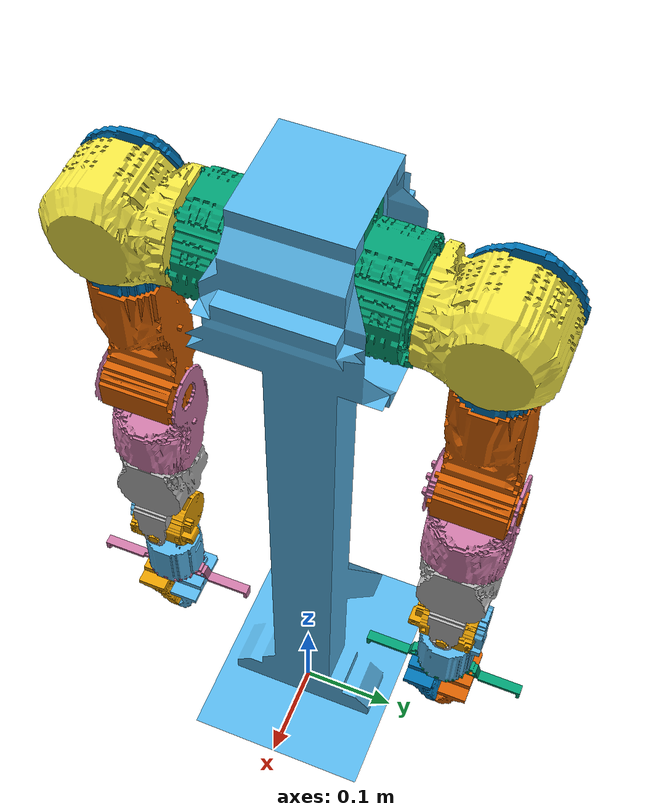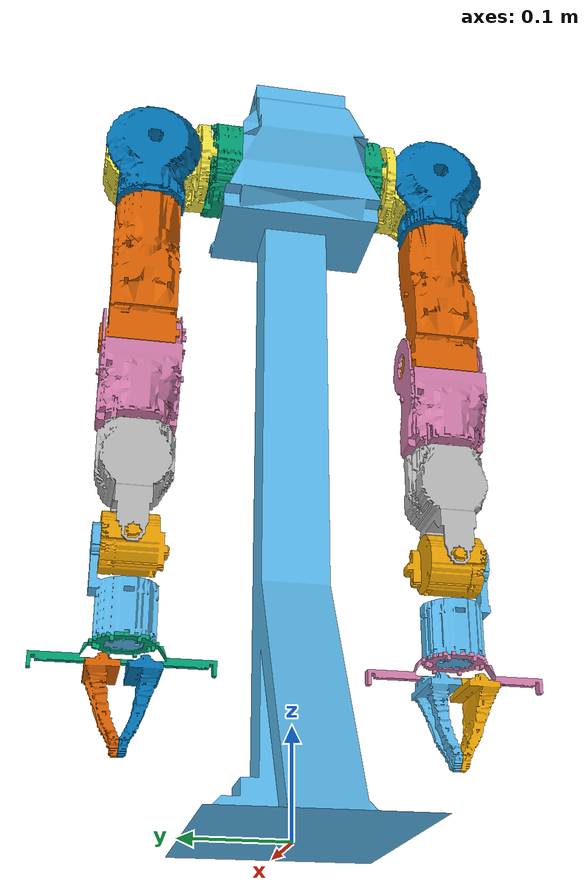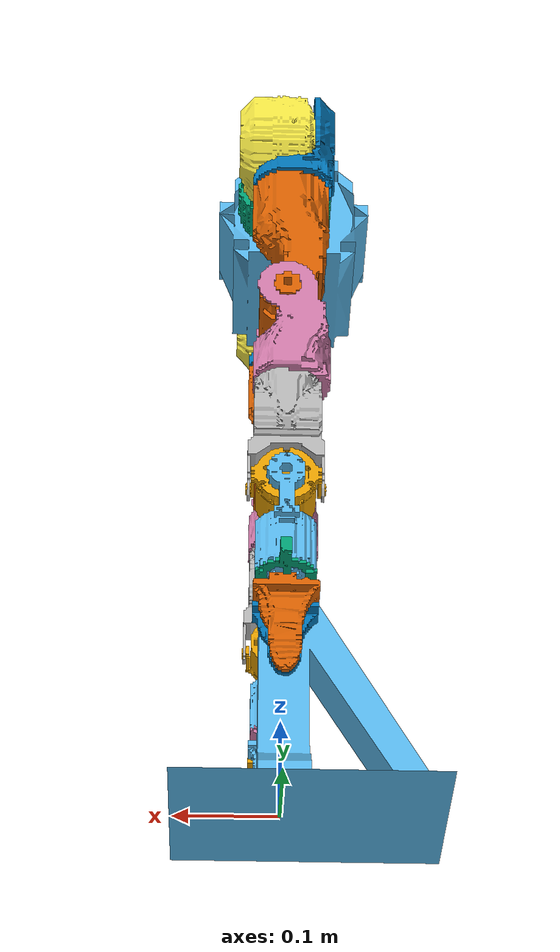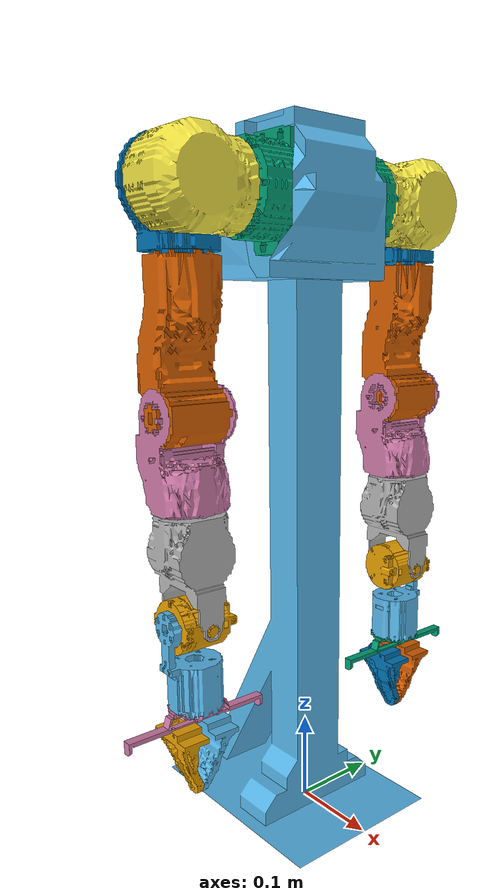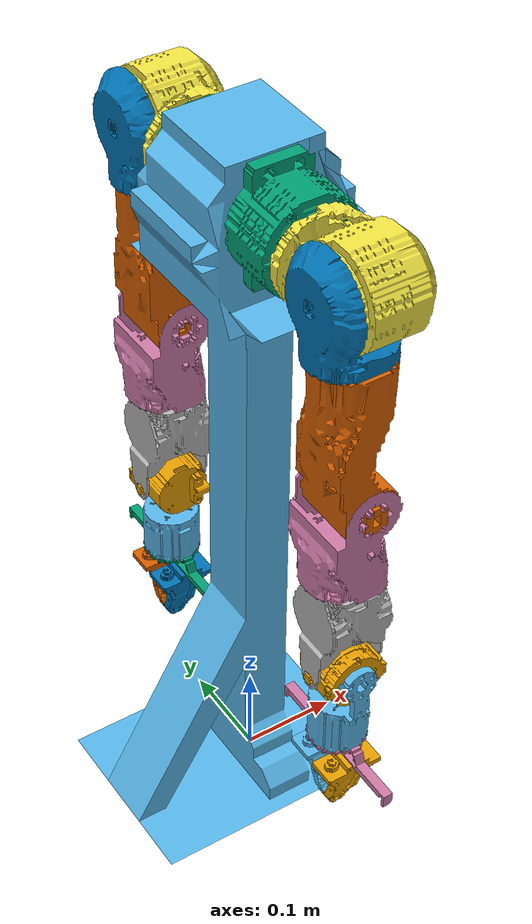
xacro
<?xml version="1.0"?>
<robot name="openarm_v10" xmlns:xacro="http://www.ros.org/wiki/xacro">

	<xacro:arg name="ros2_control_hardware_type" default="mock_components"/>

	<link name="world"/>

	<joint name="world_fixed" type="fixed">
		<parent link="world"/>
		<child link="base_link"/>
	</joint>

	<xacro:arg name="type" default="bimanual"/>

	<!-- 直接include robot.xacro并根据type参数传递 -->
	<xacro:include filename="$(find openarm_description)/xacro/robot.xacro"/>

	<xacro:include filename="$(find openarm_description)/xacro/ros2_control/interfaces.xacro"/>
	<ros2_control name="openarm_$(arg type)_system" type="system">
		<hardware>
			<xacro:if value="${'$(arg ros2_control_hardware_type)' == 'gz'}">
				<plugin>gz_ros2_control/GazeboSimSystem</plugin>
			</xacro:if>
			<xacro:if value="${'$(arg ros2_control_hardware_type)' == 'mock_components'}">
				<plugin>mock_components/GenericSystem</plugin>
			</xacro:if>
			<xacro:if value="${'$(arg ros2_control_hardware_type)' == 'isaac'}">
				<plugin>topic_based_ros2_control/TopicBasedSystem</plugin>
				<param name="joint_commands_topic">/isaac/joint_command</param>
				<param name="joint_states_topic">/isaac/joint_states</param>
				<param name="sum_wrapped_joint_states">false</param>
				<param name="initialize_commands_from_state">true</param>
			</xacro:if>
			<xacro:if value="${'$(arg ros2_control_hardware_type)' == 'real'}">
				<plugin>topic_based_ros2_control/TopicBasedSystem</plugin>
				<param name="joint_commands_topic">/joint_command_robot</param>
				<param name="joint_states_topic">/joint_states_robot</param>
				<param name="sum_wrapped_joint_states">false</param>
				<param name="initialize_commands_from_state">true</param>
			</xacro:if>
		</hardware>

		<xacro:if value="${'$(arg type)' == 'bimanual'}">
			<!-- Left Arm Joints -->
			<xacro:openarm_interfaces name="left"/>
			<!-- Right Arm Joints -->
			<xacro:openarm_interfaces name="right"/>
		</xacro:if>

		<xacro:if value="${'$(arg type)' == 'left' or '$(arg type)' == 'right'}">
			<xacro:openarm_interfaces name=""/>
		</xacro:if>

	</ros2_control>

	<!-- Gazebo plugin configuration -->
	<xacro:arg name="gazebo" default="false"/>
	<xacro:if value="$(arg gazebo)">
		<gazebo>
			<plugin filename="gz_ros2_control-system" name="gz_ros2_control::GazeboSimROS2ControlPlugin">
				<xacro:if value="${'$(arg type)' == 'bimanual'}">
					<parameters>$(find openarm_description)/config/ros2_control/ros2_controllers.yaml</parameters>
				</xacro:if>
				<xacro:if value="${'$(arg type)' == 'left'}">
					<parameters>$(find openarm_description)/config/ros2_control/left.yaml</parameters>
				</xacro:if>
				<xacro:if value="${'$(arg type)' == 'right'}">
					<parameters>$(find openarm_description)/config/ros2_control/right.yaml</parameters>
				</xacro:if>
			</plugin>
		</gazebo>
	</xacro:if>
</robot>

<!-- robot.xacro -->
<robot name="OpenArm" xmlns:xacro="http://www.ros.org/wiki/xacro">

	<xacro:include filename="$(find openarm_description)/xacro/arm.xacro"/>
	<xacro:include filename="$(find openarm_description)/xacro/gripper.xacro"/>

	<xacro:arg name="type" default="bimanual"/>

	<!-- 根据type参数决定机器人类型 -->
	<xacro:if value="${'$(arg type)' == 'bimanual'}">
		<!-- Base link -->
		<link name="base_link">
			<inertial>
				<mass value="13.89"/>
				<inertia ixx="1.653" ixy="0.0" ixz="0.0" iyy="1.653" iyz="0.0" izz="0.051"/>
			</inertial>
			<visual>
				<geometry>
					<mesh filename="file://$(find openarm_description)/meshes/body/body.obj"/>
				</geometry>
			</visual>
			<collision>
				<geometry>
					<mesh filename="file://$(find openarm_description)/meshes/body/body.stl"/>
				</geometry>
			</collision>
		</link>

		<!-- Left Arm -->
		<joint name="left_arm_base_joint" type="fixed">
			<parent link="base_link"/>
			<child link="left_base_link"/>
			<origin rpy="-1.5708 0 0" xyz="0.0 0.031 0.698"/>
		</joint>
		<xacro:OpenArm name="left" direction="-1"/>

		<!-- Right Arm -->
		<joint name="right_arm_base_joint" type="fixed">
			<parent link="base_link"/>
			<child link="right_base_link"/>
			<origin rpy="1.5708 0 0" xyz="0.0 -0.031 0.698"/>
		</joint>
		<xacro:OpenArm name="right" direction="1"/>

		<!-- Left Gripper -->
		<joint name="left_hand_joint" type="fixed">
			<parent link="left_link7"/>
			<child link="left_hand"/>
			<origin xyz="0 -0.0 0.1001"/>
		</joint>
		<xacro:OpenArmGripper name="left"/>

		<!-- Right Gripper -->
		<joint name="right_hand_joint" type="fixed">
			<parent link="right_link7"/>
			<child link="right_hand"/>
			<origin xyz="0 -0.0 0.1001"/>
		</joint>
		<xacro:OpenArmGripper name="right"/>
	</xacro:if>

	<xacro:if value="${'$(arg type)' == 'right'}">
		<xacro:OpenArm name=""/>
		<joint name="hand_joint" type="fixed">
			<parent link="link7"/>
			<child link="hand"/>
			<origin xyz="0 -0.0 0.1001"/>
		</joint>
		<xacro:OpenArmGripper name=""/>
	</xacro:if>

	<xacro:if value="${'$(arg type)' == 'left'}">
		<xacro:OpenArm name="" direction="-1"/>
		<joint name="hand_joint" type="fixed">
			<parent link="link7"/>
			<child link="hand"/>
			<origin xyz="0 -0.0 0.1001"/>
		</joint>
		<xacro:OpenArmGripper name=""/>
	</xacro:if>

</robot>

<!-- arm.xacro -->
<robot xmlns:xacro="http://www.ros.org/wiki/xacro">

	<xacro:macro name="OpenArm" params="name direction:=1">
		<xacro:property name="prefix" value="${name + '_' if name else ''}"/>

		<!-- Arm base link -->
		<link name="${prefix}base_link">
			<visual>
				<geometry>
					<mesh filename="file://$(find openarm_description)/meshes/arm/visual/base.obj"
								scale="1 ${direction*1} 1"/>
				</geometry>
			</visual>
			<collision>
				<geometry>
					<mesh filename="file://$(find openarm_description)/meshes/arm/collision/base.stl"/>
				</geometry>
			</collision>
			<inertial>
				<origin xyz="-0.0009483362816297526 ${direction*0.0001580207020448382} 0.03076860287587199"/>
				<mass value="1.1432284943239561"/>
				<inertia ixx="0.001128" ixy="-4e-06" ixz="-3.3e-05" iyy="0.000962" iyz="-7e-06" izz="0.00147"/>
			</inertial>
		</link>

		<!-- Link 1 -->
		<link name="${prefix}link1">
			<visual>
				<geometry>
					<mesh filename="file://$(find openarm_description)/meshes/arm/visual/link1.obj"
								scale="1 ${direction*1} 1"/>
				</geometry>
			</visual>
			<collision>
				<geometry>
					<mesh filename="file://$(find openarm_description)/meshes/arm/collision/link1.stl"
								scale="1 ${direction*1} 1"/>
				</geometry>
			</collision>
			<inertial>
				<origin xyz="0.0011467657911800769 ${direction*3.319987657026362e-05} 0.05395284380736254"/>
				<mass value="1.1416684646202298"/>
				<inertia ixx="0.001567" ixy="-1e-06" ixz="-2.9e-05" iyy="0.001273" iyz="1e-06" izz="0.001016"/>
			</inertial>
		</link>

		<joint name="${prefix}joint1" type="revolute">
			<origin xyz="0.0 0.0 0.0625"/>
			<parent link="${prefix}base_link"/>
			<child link="${prefix}link1"/>
			<axis xyz="0 0 1"/>
			<xacro:if value="${direction == -1}">
				<limit effort="40" lower="-3.490659" upper="1.3962629999999998" velocity="16.754666"/>
			</xacro:if>
			<xacro:if value="${direction == 1}">
				<limit effort="40" lower="-1.396263" upper="3.490659" velocity="16.754666"/>
			</xacro:if>
		</joint>

		<!-- Link 2 -->
		<link name="${prefix}link2">
			<visual>
				<geometry>
					<mesh filename="file://$(find openarm_description)/meshes/arm/visual/link2.obj" scale="1 ${direction} 1"/>
				</geometry>
			</visual>
			<collision>
				<origin xyz="0.0301 0.0 -0.1225"/>
				<geometry>
					<mesh filename="file://$(find openarm_description)/meshes/arm/collision/link2.stl"
								scale="1 ${direction} 1"/>
				</geometry>
			</collision>
			<inertial>
				<origin xyz="0.00839629182351943 ${direction*-2.0145102027597523e-08} 0.03256649300522363"/>
				<mass value="0.2775092746011571"/>
				<inertia ixx="0.000359" ixy="1e-06" ixz="-0.000109" iyy="0.000376" iyz="1e-06" izz="0.000232"/>
			</inertial>
		</link>

		<joint name="${prefix}joint2" type="revolute">
			<xacro:if value="${prefix == ''}">
				<origin xyz="-0.0301 0.0 0.06"/>
			</xacro:if>
			<xacro:unless value="${prefix == ''}">
				<origin rpy="${direction*1.57079632679} 0 0" xyz="-0.0301 0.0 0.06"/>
			</xacro:unless>
			<parent link="${prefix}link1"/>
			<child link="${prefix}link2"/>
			<axis xyz="-1 0 0"/>
			<xacro:if value="${direction == -1}">
				<limit effort="40" lower="-3.3161253267948965" upper="0.17453267320510335" velocity="16.754666"/>
			</xacro:if>
			<xacro:if value="${direction == 1}">
				<limit effort="40" lower="-0.17453267320510335" upper="3.3161253267948965" velocity="16.754666"/>
			</xacro:if>
		</joint>

		<!-- Link 3 -->
		<link name="${prefix}link3">
			<visual>
				<geometry>
					<mesh filename="file://$(find openarm_description)/meshes/arm/visual/link3.obj" scale="1 ${direction} 1"/>
				</geometry>
			</visual>
			<collision>
				<geometry>
					<mesh filename="file://$(find openarm_description)/meshes/arm/collision/link3.stl"
								scale="1 ${direction} 1"/>
				</geometry>
			</collision>
			<inertial>
				<origin xyz="-0.002104752099628911 ${direction*-0.0005549085042607548} 0.09047470545721961"/>
				<mass value="1.073863338202347"/>
				<inertia ixx="0.004372" ixy="1e-06" ixz="1.1e-05" iyy="0.004319" iyz="-3.6e-05" izz="0.000661"/>
			</inertial>
		</link>

		<joint name="${prefix}joint3" type="revolute">
			<origin xyz="0.0301 0.0 0.06625"/>
			<parent link="${prefix}link2"/>
			<child link="${prefix}link3"/>
			<axis xyz="0 0 1"/>
			<limit effort="27" lower="-1.570796" upper="1.570796" velocity="5.445426"/>
		</joint>

		<!-- Link 4 -->
		<link name="${prefix}link4">
			<visual>
				<geometry>
					<mesh filename="file://$(find openarm_description)/meshes/arm/visual/link4.obj"/>
				</geometry>
			</visual>
			<collision>
				<geometry>
					<mesh filename="file://$(find openarm_description)/meshes/arm/collision/link4.stl"/>
				</geometry>
			</collision>
			<inertial>
				<origin xyz="-0.0029006831074562967 -0.03030575826634669 0.06339637422196209"/>
				<mass value="0.6348534566833373"/>
				<inertia ixx="0.000623" ixy="-1e-06" ixz="-1.9e-05" iyy="0.000511" iyz="3.8e-05" izz="0.000334"/>
			</inertial>
		</link>

		<joint name="${prefix}joint4" type="revolute">
			<origin xyz="-0.0 0.0315 0.15375"/>
			<parent link="${prefix}link3"/>
			<child link="${prefix}link4"/>
			<axis xyz="0 1 0"/>
			<limit effort="27" lower="0.0" upper="2.443461" velocity="5.445426"/>
		</joint>

		<!-- Link 5 -->
		<link name="${prefix}link5">
			<visual>
				<geometry>
					<mesh filename="file://$(find openarm_description)/meshes/arm/visual/link5.obj" scale="1 ${direction} 1"/>
				</geometry>
			</visual>
			<collision>
				<geometry>
					<mesh filename="file://$(find openarm_description)/meshes/arm/collision/link5.stl"
								scale="1 ${direction} 1"/>
				</geometry>
			</collision>
			<inertial>
				<origin xyz="-0.003049665024221911 ${direction*0.0008866902457326625} 0.043079803024980934"/>
				<mass value="0.6156588026168502"/>
				<inertia ixx="0.000423" ixy="-8e-06" ixz="6e-06" iyy="0.000445" iyz="-6e-06" izz="0.000324"/>
			</inertial>
		</link>

		<joint name="${prefix}joint5" type="revolute">
			<origin xyz="0.0 -0.0315 0.0955"/>
			<parent link="${prefix}link4"/>
			<child link="${prefix}link5"/>
			<axis xyz="0 0 1"/>
			<limit effort="7" lower="-1.570796" upper="1.570796" velocity="20.943946"/>
		</joint>

		<!-- Link 6 -->
		<link name="${prefix}link6">
			<visual>
				<geometry>
					<mesh filename="file://$(find openarm_description)/meshes/arm/visual/link6.obj"
								scale="1 ${direction*1} 1"/>
				</geometry>
			</visual>
			<collision>
				<geometry>
					<mesh filename="file://$(find openarm_description)/meshes/arm/collision/link6.stl"
								scale="1 ${direction*1} 1"/>
				</geometry>
			</collision>
			<inertial>
				<origin xyz="-0.037136587005447405 ${direction*0.00033230528343419053} -9.498374522309838e-05"/>
				<mass value="0.475202773187987"/>
				<inertia ixx="0.000143" ixy="1e-06" ixz="1e-06" iyy="0.000157" iyz="1e-06" izz="0.000159"/>
			</inertial>
		</link>

		<joint name="${prefix}joint6" type="revolute">
			<origin xyz="0.0375 0.0 0.1205"/>
			<parent link="${prefix}link5"/>
			<child link="${prefix}link6"/>
			<axis xyz="1 0 0"/>
			<limit effort="7" lower="-0.785398" upper="0.785398" velocity="20.943946"/>
		</joint>

		<!-- Link 7 -->
		<link name="${prefix}link7">
			<visual>
				<geometry>
					<mesh filename="file://$(find openarm_description)/meshes/arm/visual/link7.obj"
								scale="1 ${direction*1} 1"/>
				</geometry>
			</visual>
			<collision>
				<geometry>
					<mesh filename="file://$(find openarm_description)/meshes/arm/collision/link7.stl"
								scale="1 ${direction*1} 1"/>
				</geometry>
			</collision>
			<inertial>
				<origin xyz="6.875510271106056e-05 ${direction*0.01266175250761268} 0.06951945409987448"/>
				<mass value="0.4659771327380578"/>
				<inertia ixx="0.000639" ixy="1e-06" ixz="1e-06" iyy="0.000497" iyz="8.9e-05" izz="0.000342"/>
			</inertial>
		</link>

		<joint name="${prefix}joint7" type="revolute">
			<origin xyz="-0.0375 0.0 0.0"/>
			<parent link="${prefix}link6"/>
			<child link="${prefix}link7"/>
			<axis xyz="0 ${direction*1} 0"/>
			<limit effort="7" lower="-1.570796" upper="1.570796" velocity="20.943946"/>
		</joint>

	</xacro:macro>

</robot>

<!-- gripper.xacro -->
<robot xmlns:xacro="http://www.ros.org/wiki/xacro">

	<xacro:macro name="OpenArmGripper" params="name">
		<xacro:property name="prefix" value="${name + '_' if name else ''}"/>

		<!-- Hand base link -->
		<link name="${prefix}hand">
			<visual>
				<geometry>
					<mesh filename="file://$(find openarm_description)/meshes/gripper/visual/hand.obj"/>
				</geometry>
			</visual>
			<collision>
				<geometry>
					<mesh filename="file://$(find openarm_description)/meshes/gripper/collision/hand.stl"/>
				</geometry>
			</collision>
			<inertial>
				<origin xyz="0.0 0.002 0.03"/>
				<mass value="0.35"/>
				<inertia ixx="0.0002473" ixy="1e-06" ixz="1e-06" iyy="1.763e-05" iyz="1e-06" izz="0.0002521"/>
			</inertial>
		</link>

		<!-- Hand TCP frame -->
		<link name="${prefix}hand_tcp"/>
		<joint name="${prefix}hand_tcp_joint" type="fixed">
			<origin xyz="0 -0.0 0.08"/>
			<parent link="${prefix}hand"/>
			<child link="${prefix}hand_tcp"/>
		</joint>

		<!-- Left finger (from gripper perspective) -->
		<link name="${prefix}left_finger">
			<visual>
				<geometry>
					<mesh filename="file://$(find openarm_description)/meshes/gripper/visual/finger.obj"/>
				</geometry>
			</visual>
			<collision>
				<geometry>
					<mesh filename="file://$(find openarm_description)/meshes/gripper/collision/finger.stl"/>
				</geometry>
			</collision>
			<inertial>
				<origin xyz="0.0064528 0.01702 0.0219685"/>
				<mass value="0.03602545343277134"/>
				<inertia ixx="0.0001" ixy="0" ixz="0" iyy="0.0001" iyz="0" izz="0.0001"/>
			</inertial>
		</link>

		<!-- Right finger (from gripper perspective) -->
		<link name="${prefix}right_finger">
			<inertial>
				<origin xyz="0.0064528 -0.01702 0.0219685"/>
				<mass value="0.03602545343277134"/>
				<inertia ixx="0.0001" ixy="0" ixz="0" iyy="0.0001" iyz="0" izz="0.0001"/>
			</inertial>
			<visual>
				<geometry>
					<mesh filename="file://$(find openarm_description)/meshes/gripper/visual/finger.obj" scale="1 -1 1"/>
				</geometry>
			</visual>
			<collision>
				<geometry>
					<mesh filename="file://$(find openarm_description)/meshes/gripper/collision/finger.stl" scale="1 -1 1"/>
				</geometry>
			</collision>
		</link>

		<!-- Finger joints -->
		<joint name="${prefix}gripper_joint" type="prismatic">
			<parent link="${prefix}hand"/>
			<child link="${prefix}right_finger"/>
			<origin xyz="0 -0.006 0.015"/>
			<axis xyz="0 -1 0"/>
			<limit effort="333" lower="0.0" upper="0.044" velocity="10.0"/>
		</joint>

		<joint name="${prefix}finger_joint2" type="prismatic">
			<parent link="${prefix}hand"/>
			<child link="${prefix}left_finger"/>
			<origin xyz="0 0.006 0.015"/>
			<axis xyz="0 1 0"/>
			<limit effort="333" lower="0.0" upper="0.044" velocity="10.0"/>
			<mimic joint="${prefix}gripper_joint"/>
		</joint>

	</xacro:macro>

</robot>
